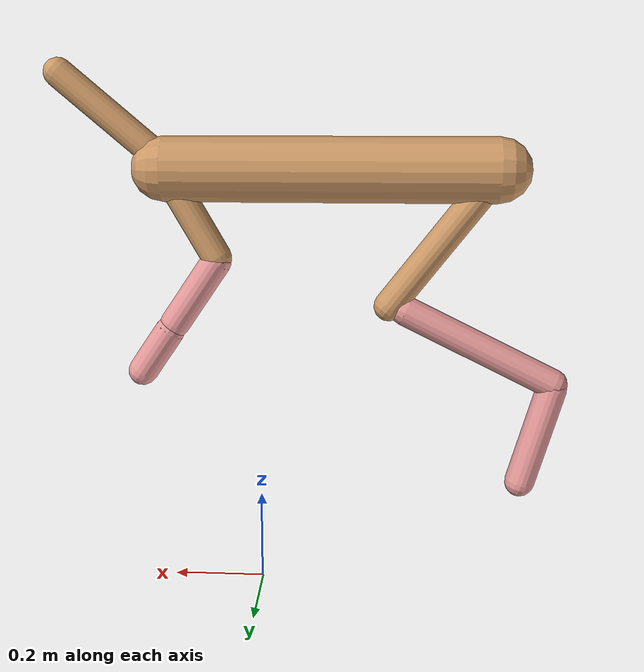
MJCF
<mujoco model="cheetah">
  <compiler angle="radian" coordinate="local" inertiafromgeom="true" settotalmass="14" />
  <default>
    <joint armature=".1" damping=".01" limited="true" solimplimit="0 .8 .03" solreflimit=".02 1" stiffness="8" />
    <geom conaffinity="0" condim="3" contype="1" friction="0.8 .1 .1" rgba="0.8 0.6 .4 1" solimp="0.0 0.8 0.01" solref="0.02 1" />
    <motor ctrllimited="true" ctrlrange="-1 1" />
  </default>
  <size nstack="300000" nuser_geom="1" />
  <option gravity="0 0 -9.81" timestep="0.01" />
  <worldbody>
    <body name="torso" pos="0.0 0.0 0.9248835128486264">
      <joint armature="0" axis="1 0 0" damping="0" limited="false" name="ignorex" pos="0 0 0" stiffness="0" type="slide" />
      <joint armature="0" axis="0 0 1" damping="0" limited="false" name="ignorez" pos="0 0 0" stiffness="0" type="slide" />
      <joint armature="0" axis="0 1 0" damping="0" limited="false" name="ignorey" pos="0 0 0" stiffness="0" type="hinge" />
      <geom fromto="-0.5 0.0 0.0 0.19958552223031878 0.0 0.0" name="torso" size="0.06904518336500773" type="capsule" />
      <geom axisangle="0 1 0 .87" name="head" pos="0.29958552223031876 0.0 0.1" size="0.03118936031198284 0.15" type="capsule" />

      <body name="bthigh" pos="-.5 0 0">
        <joint axis="0 1 0" damping="6" name="bthigh" pos="0 0 0" range="-.52 1.05" stiffness="240" type="hinge" />
        <geom axisangle="0 1 0 -3.8" name="bthigh" pos="0.11684874166916585 0.0 -0.1519033641699156" size="0.03260963314931211 0.17263399098563628" type="capsule" />
        <body name="bshin" pos="0.1936974833383317 0.0 -0.2938067283398312">
          <joint axis="0 1 0" damping="4.5" name="bshin" pos="0 0 0" range="-.785 .785" stiffness="180" type="hinge" />
          <geom axisangle="0 1 0 -2.03" name="bshin" pos="-0.16556888924144794 0.0 -0.08278444462072397" rgba="0.9 0.6 0.6 1" size="0.03260963314931211 0.1785868872265203" type="capsule" />
          <body name="bfoot" pos="-0.3311377784828959 0.0 -0.16556888924144794">
            <joint axis="0 1 0" damping="3" name="bfoot" pos="0 0 0" range="-.4 .785" stiffness="120" type="hinge" />
            <geom axisangle="0 1 0 -.27" name="bfoot" pos="0.03529317737942859 0.0 -0.11411460686015244" rgba="0.9 0.6 0.6 1" size="0.03260963314931211 0.1119144493286194" type="capsule" />
            <inertial mass="10" />
          </body>
        </body>
      </body>
      <body name="fthigh" pos="0.19958552223031878 0.0 0.0">
        <joint axis="0 1 0" damping="4.5" name="fthigh" pos="0 0 0" range="-1.5 0.8" stiffness="180" type="hinge" />
        <geom axisangle="0 1 0 .52" name="fthigh" pos="-0.05606799269795941 0.0 -0.09611655891078755" size="0.0322 0.10535005269939933" type="capsule" />
        <body name="fshin" pos="-0.11213598539591882 0.0 -0.1922331178215751">
          <joint axis="0 1 0" damping="3" name="fshin" pos="0 0 0" range="-1.2 1.1" stiffness="120" type="hinge" />
          <geom axisangle="0 1 0 -.6" name="fshin" pos="0.05209766170201221 0.0 -0.07213522389509382" rgba="0.9 0.6 0.6 1" size="0.0322 0.08396319989576187" type="capsule" />
          <body name="ffoot" pos="0.10419532340402442 0.0 -0.14427044779018763">
            <joint axis="0 1 0" damping="1.5" name="ffoot" pos="0 0 0" range="-3.1 -0.3" stiffness="60" type="hinge" />
            <geom axisangle="0 1 0 -.6" name="ffoot" pos="0.03713056899883264 0.0 -0.057758662887072994" rgba="0.9 0.6 0.6 1" size="0.0322 0.0554473961575786" type="capsule" />
            <inertial mass="10" />
          </body>
        </body>
      </body>
    </body>
  </worldbody>
  <actuator>
    <motor gear="120" joint="bthigh" name="bthigh" />
    <motor gear="90" joint="bshin" name="bshin" />
    <motor gear="60" joint="bfoot" name="bfoot" />
    <motor gear="120" joint="fthigh" name="fthigh" />
    <motor gear="60" joint="fshin" name="fshin" />
    <motor gear="30" joint="ffoot" name="ffoot" />
  </actuator>
</mujoco>
